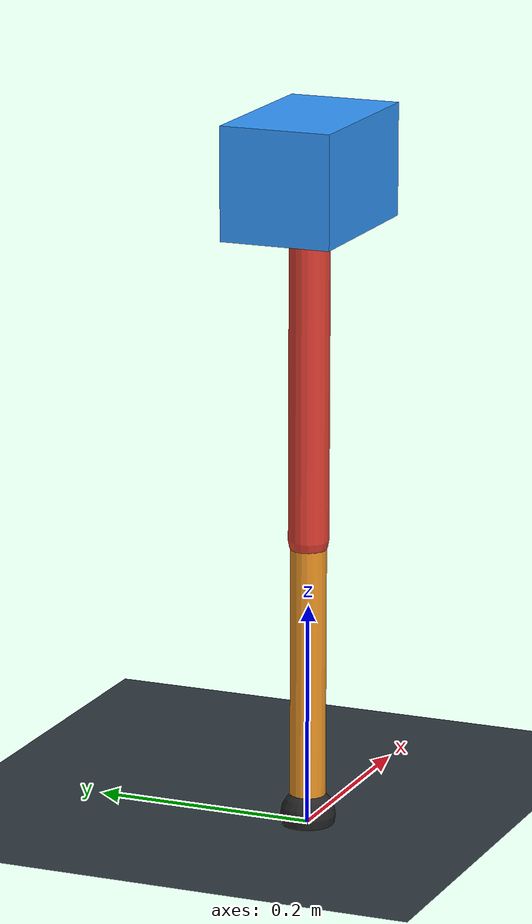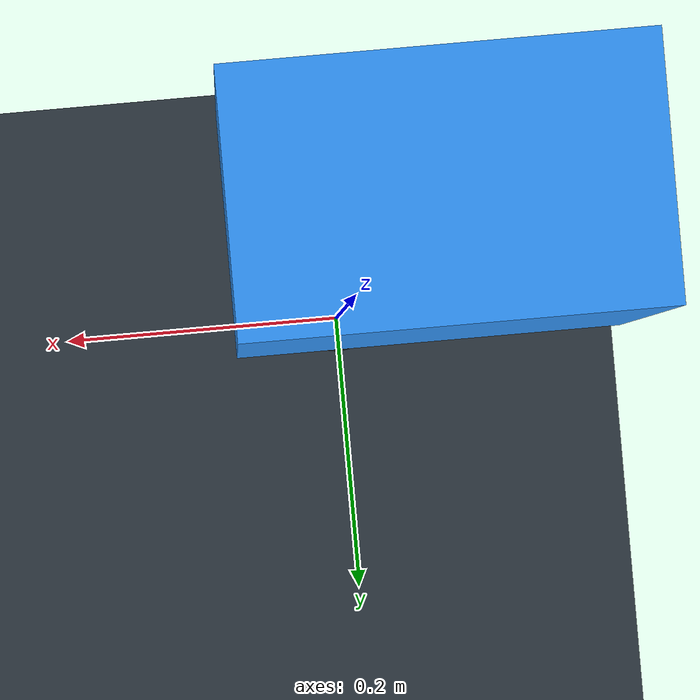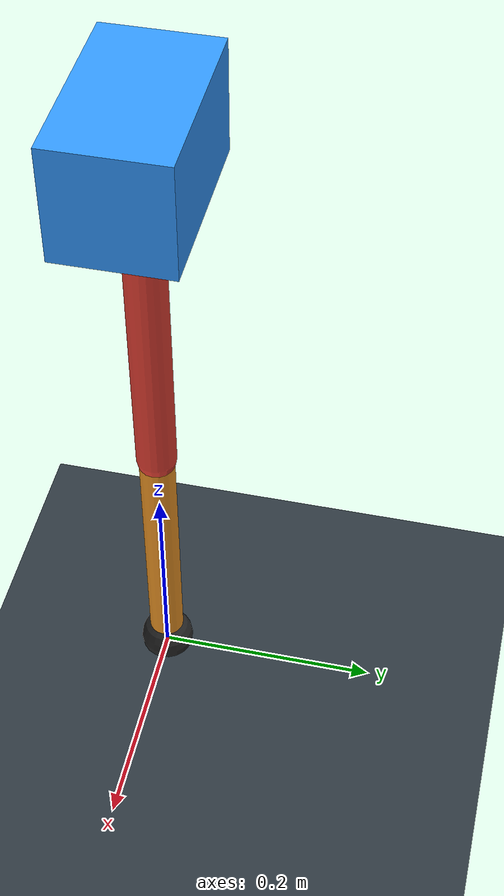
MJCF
<mujoco model="single_axis_two_bar">
  <compiler angle="radian" inertiafromgeom="true"/>
  <option timestep="0.001" integrator="implicitfast" gravity="0 0 -9.81"/>
  <default>
    <joint damping="0.08"/>
    <geom friction="1.2 0.01 0.0001" condim="3"/>
  </default>
  <worldbody>
    <geom name="floor" type="plane" size="5 5 0.1" rgba="0.18 0.22 0.25 1"/>
    <body name="carriage" pos="0 0 0.5884255105985692">
      <joint name="pole_slide" type="slide" axis="0 0 1"/>
      <geom name="payload" type="box" size="0.08 0.05 0.05" mass="2.603034820361226" rgba="0.2 0.6 1 1"/>
      <body name="thigh" pos="0 0 0">
        <joint name="hip" type="hinge" axis="0 1 0"/>
        <geom name="thigh_link" type="capsule" fromto="0 0 0 0 0 -0.3287403800633121" size="0.018" mass="0.23423186471597535" rgba="0.9 0.25 0.2 1"/>
        <body name="shank" pos="0 0 -0.3287403800633121">
          <joint name="knee" type="hinge" axis="0 1 0"/>
          <geom name="shank_link" type="capsule" fromto="0 0 0 0 0 -0.252110661790883" size="0.016" mass="0.17963217787448027" rgba="0.95 0.6 0.15 1"/>
          <geom name="foot" type="sphere" pos="0 0 -0.252110661790883" size="0.025" mass="0.03" rgba="0.15 0.15 0.15 1"/>
          <site name="toe" pos="0 0 -0.252110661790883" size="0.008"/>
        </body>
      </body>
    </body>
  </worldbody>
  <actuator>
    <motor name="hip_motor" joint="hip" ctrlrange="-29.194323127760516 29.194323127760516"/>
    <motor name="knee_motor" joint="knee" ctrlrange="-74.95539125220947 74.95539125220947"/>
  </actuator>
</mujoco>
